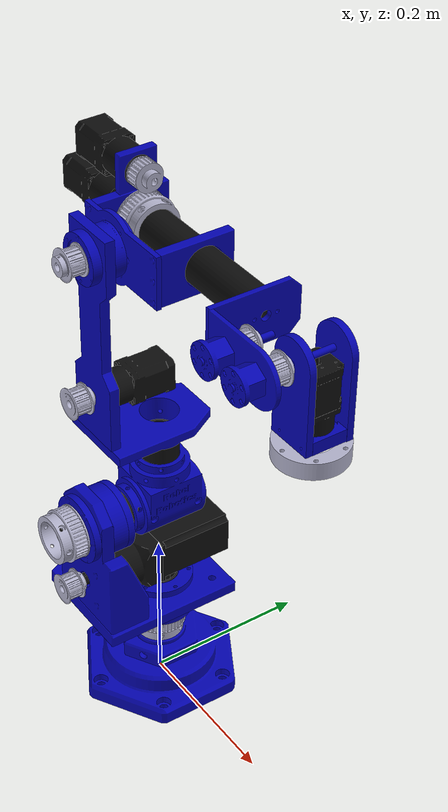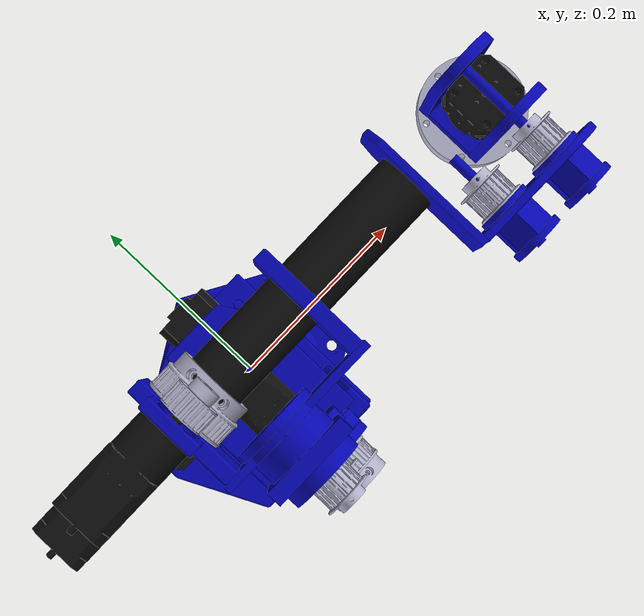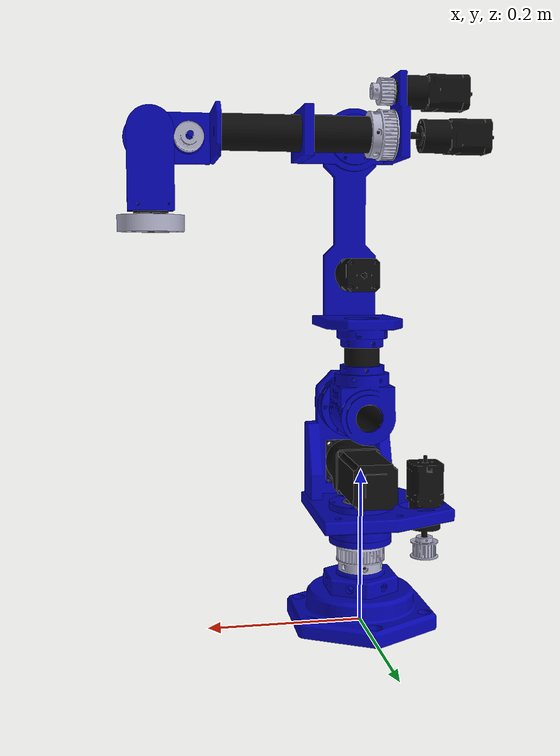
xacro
<?xml version="1.0"?>
<robot xmlns:xacro="http://www.ros.org/wiki/xacro" name="arm">
    <xacro:arg name="initial_positions_file" default="initial_positions.yaml" />

    <!-- Import arm urdf file -->
    <xacro:include filename="$(find arm_description)/urdf/arm.xacro" />

    <!-- Import control_xacro -->
    <xacro:include filename="arm.ros2_control.xacro" />

    <xacro:arm_ros2_control name="FakeSystem" initial_positions_file="$(arg initial_positions_file)"/>

</robot>

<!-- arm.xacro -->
<robot name="arm" xmlns:xacro="http://www.ros.org/wiki/xacro">

<xacro:include filename="$(find arm_description)/urdf/materials.xacro" />
<xacro:include filename="$(find arm_description)/urdf/arm.trans" />
<xacro:include filename="$(find arm_description)/urdf/arm.gazebo" />
<xacro:include filename="ros2_control.xacro" />

<link name="base_link">
  <inertial>
    <origin xyz="2.6758679619289235e-14 0.0 0.02266233904051618" rpy="0 0 0"/>
    <mass value="2.5346787978702183"/>
    <inertia ixx="0.005207" iyy="0.005207" izz="0.009019" ixy="-0.0" iyz="-0.0" ixz="0.0"/>
  </inertial>
  <visual>
    <origin xyz="0 0 0" rpy="0 0 0"/>
    <geometry>
      <mesh filename="file://$(find arm_description)/meshes/base_link.stl" scale="0.001 0.001 0.001"/>
    </geometry>
    <material name="blue"/>
  </visual>
  <collision>
    <origin xyz="0 0 0" rpy="0 0 0"/>
    <geometry>
      <mesh filename="file://$(find arm_description)/meshes/base_link.stl" scale="0.001 0.001 0.001"/>
    </geometry>
  </collision>
</link>

<link name="pulley_c_v9_1">
  <inertial>
    <origin xyz="-5.567313502074602e-17 4.098862764811248e-17 -0.003294330259347028" rpy="0 0 0"/>
    <mass value="0.05283781710784995"/>
    <inertia ixx="2.4e-05" iyy="2.4e-05" izz="3.8e-05" ixy="-0.0" iyz="0.0" ixz="-0.0"/>
  </inertial>
  <visual>
    <origin xyz="-0.0 -0.0 -0.09" rpy="0 0 0"/>
    <geometry>
      <mesh filename="file://$(find arm_description)/meshes/pulley_c_v9_1.stl" scale="0.001 0.001 0.001"/>
    </geometry>
    <material name="iron"/>
  </visual>
  <collision>
    <origin xyz="-0.0 -0.0 -0.09" rpy="0 0 0"/>
    <geometry>
      <mesh filename="file://$(find arm_description)/meshes/pulley_c_v9_1.stl" scale="0.001 0.001 0.001"/>
    </geometry>
  </collision>
</link>

<link name="shoulder_bearling_house_prt1_v14_1">
  <inertial>
    <origin xyz="4.208209917286061e-06 2.4287672297167474e-06 -0.012900153986197746" rpy="0 0 0"/>
    <mass value="0.057783249767342296"/>
    <inertia ixx="3.6e-05" iyy="3.6e-05" izz="7.1e-05" ixy="-0.0" iyz="0.0" ixz="0.0"/>
  </inertial>
  <visual>
    <origin xyz="-0.0 -0.0 -0.123" rpy="0 0 0"/>
    <geometry>
      <mesh filename="file://$(find arm_description)/meshes/shoulder_bearling_house_prt1_v14_1.stl" scale="0.001 0.001 0.001"/>
    </geometry>
    <material name="blue"/>
  </visual>
  <collision>
    <origin xyz="-0.0 -0.0 -0.123" rpy="0 0 0"/>
    <geometry>
      <mesh filename="file://$(find arm_description)/meshes/shoulder_bearling_house_prt1_v14_1.stl" scale="0.001 0.001 0.001"/>
    </geometry>
  </collision>
</link>

<link name="table1_v2_1">
  <inertial>
    <origin xyz="-0.01893394777000812 -0.0198227756761575 0.008078541713728321" rpy="0 0 0"/>
    <mass value="0.9953039551471342"/>
    <inertia ixx="0.002494" iyy="0.002414" izz="0.004866" ixy="-9.6e-05" iyz="2e-06" ixz="-1e-06"/>
  </inertial>
  <visual>
    <origin xyz="-0.0 -0.0 -0.1344" rpy="0 0 0"/>
    <geometry>
      <mesh filename="file://$(find arm_description)/meshes/table1_v2_1.stl" scale="0.001 0.001 0.001"/>
    </geometry>
    <material name="blue"/>
  </visual>
  <collision>
    <origin xyz="-0.0 -0.0 -0.1344" rpy="0 0 0"/>
    <geometry>
      <mesh filename="file://$(find arm_description)/meshes/table1_v2_1.stl" scale="0.001 0.001 0.001"/>
    </geometry>
  </collision>
</link>

<link name="shoulder_bearling_house_prt3_v2_1">
  <inertial>
    <origin xyz="-3.326885494954389e-06 -9.453818210990768e-11 0.004385481296303423" rpy="0 0 0"/>
    <mass value="0.05938208856291772"/>
    <inertia ixx="3.7e-05" iyy="3.7e-05" izz="7.3e-05" ixy="0.0" iyz="-0.0" ixz="-0.0"/>
  </inertial>
  <visual>
    <origin xyz="-0.0 -0.0 -0.1504" rpy="0 0 0"/>
    <geometry>
      <mesh filename="file://$(find arm_description)/meshes/shoulder_bearling_house_prt3_v2_1.stl" scale="0.001 0.001 0.001"/>
    </geometry>
    <material name="blue"/>
  </visual>
  <collision>
    <origin xyz="-0.0 -0.0 -0.1504" rpy="0 0 0"/>
    <geometry>
      <mesh filename="file://$(find arm_description)/meshes/shoulder_bearling_house_prt3_v2_1.stl" scale="0.001 0.001 0.001"/>
    </geometry>
  </collision>
</link>

<link name="shoulder_v2_1">
  <inertial>
    <origin xyz="-0.05003301392386567 0.00744711420020433 0.06537453945113983" rpy="0 0 0"/>
    <mass value="0.7582173734794716"/>
    <inertia ixx="0.001635" iyy="0.002653" izz="0.001251" ixy="0.0" iyz="0.000136" ixz="-1e-06"/>
  </inertial>
  <visual>
    <origin xyz="-0.05 0.095 -0.1504" rpy="0 0 0"/>
    <geometry>
      <mesh filename="file://$(find arm_description)/meshes/shoulder_v2_1.stl" scale="0.001 0.001 0.001"/>
    </geometry>
    <material name="blue"/>
  </visual>
  <collision>
    <origin xyz="-0.05 0.095 -0.1504" rpy="0 0 0"/>
    <geometry>
      <mesh filename="file://$(find arm_description)/meshes/shoulder_v2_1.stl" scale="0.001 0.001 0.001"/>
    </geometry>
  </collision>
</link>

<link name="plangearbox1_v2_1">
  <inertial>
    <origin xyz="-2.198402479996289e-05 0.04289853923367516 7.979625855469852e-06" rpy="0 0 0"/>
    <mass value="2.0006291062763104"/>
    <inertia ixx="0.001765" iyy="0.000982" izz="0.001764" ixy="0.0" iyz="1e-06" ixz="-0.0"/>
  </inertial>
  <visual>
    <origin xyz="2.4e-05 0.097184 -0.1954" rpy="0 0 0"/>
    <geometry>
      <mesh filename="file://$(find arm_description)/meshes/plangearbox1_v2_1.stl" scale="0.001 0.001 0.001"/>
    </geometry>
    <material name="black"/>
  </visual>
  <collision>
    <origin xyz="2.4e-05 0.097184 -0.1954" rpy="0 0 0"/>
    <geometry>
      <mesh filename="file://$(find arm_description)/meshes/plangearbox1_v2_1.stl" scale="0.001 0.001 0.001"/>
    </geometry>
  </collision>
</link>

<link name="stepper1_v2_1">
  <inertial>
    <origin xyz="-2.2452245726494987e-05 0.04805206213786515 3.443202523836786e-05" rpy="0 0 0"/>
    <mass value="0.47672097000804026"/>
    <inertia ixx="0.000488" iyy="0.000235" izz="0.000488" ixy="0.0" iyz="-1e-06" ixz="-0.0"/>
  </inertial>
  <visual>
    <origin xyz="6.7e-05 0.013684 -0.1954" rpy="0 0 0"/>
    <geometry>
      <mesh filename="file://$(find arm_description)/meshes/stepper1_v2_1.stl" scale="0.001 0.001 0.001"/>
    </geometry>
    <material name="black"/>
  </visual>
  <collision>
    <origin xyz="6.7e-05 0.013684 -0.1954" rpy="0 0 0"/>
    <geometry>
      <mesh filename="file://$(find arm_description)/meshes/stepper1_v2_1.stl" scale="0.001 0.001 0.001"/>
    </geometry>
  </collision>
</link>

<link name="shoulder_bearling_house2_prt3_v3_1">
  <inertial>
    <origin xyz="-4.0536114861531317e-07 -0.0059858275962992105 -9.453793303748625e-11" rpy="0 0 0"/>
    <mass value="0.05938208856291783"/>
    <inertia ixx="3.7e-05" iyy="7.3e-05" izz="3.7e-05" ixy="-0.0" iyz="0.0" ixz="0.0"/>
  </inertial>
  <visual>
    <origin xyz="4.5e-05 0.055884 -0.2754" rpy="0 0 0"/>
    <geometry>
      <mesh filename="file://$(find arm_description)/meshes/shoulder_bearling_house2_prt3_v3_1.stl" scale="0.001 0.001 0.001"/>
    </geometry>
    <material name="blue"/>
  </visual>
  <collision>
    <origin xyz="4.5e-05 0.055884 -0.2754" rpy="0 0 0"/>
    <geometry>
      <mesh filename="file://$(find arm_description)/meshes/shoulder_bearling_house2_prt3_v3_1.stl" scale="0.001 0.001 0.001"/>
    </geometry>
  </collision>
</link>

<link name="new_pipe_b_v8_1">
  <inertial>
    <origin xyz="-3.1295264940206456e-05 0.05999962743199911 0.002489679948011303" rpy="0 0 0"/>
    <mass value="0.08655426473406591"/>
    <inertia ixx="0.000229" iyy="3.8e-05" izz="0.000226" ixy="0.0" iyz="-0.0" ixz="-0.0"/>
  </inertial>
  <visual>
    <origin xyz="2.1e-05 0.102029 -0.2754" rpy="0 0 0"/>
    <geometry>
      <mesh filename="file://$(find arm_description)/meshes/new_pipe_b_v8_1.stl" scale="0.001 0.001 0.001"/>
    </geometry>
    <material name="black"/>
  </visual>
  <collision>
    <origin xyz="2.1e-05 0.102029 -0.2754" rpy="0 0 0"/>
    <geometry>
      <mesh filename="file://$(find arm_description)/meshes/new_pipe_b_v8_1.stl" scale="0.001 0.001 0.001"/>
    </geometry>
  </collision>
</link>

<link name="shoulder_bearling_house_2prt1_v5_1">
  <inertial>
    <origin xyz="4.24595728622469e-06 -0.004300516777600696 -4.207479079365584e-06" rpy="0 0 0"/>
    <mass value="0.05778324976734234"/>
    <inertia ixx="3.6e-05" iyy="7.1e-05" izz="3.6e-05" ixy="-0.0" iyz="-0.0" ixz="0.0"/>
  </inertial>
  <visual>
    <origin xyz="2.1e-05 0.102029 -0.2754" rpy="0 0 0"/>
    <geometry>
      <mesh filename="file://$(find arm_description)/meshes/shoulder_bearling_house_2prt1_v5_1.stl" scale="0.001 0.001 0.001"/>
    </geometry>
    <material name="blue"/>
  </visual>
  <collision>
    <origin xyz="2.1e-05 0.102029 -0.2754" rpy="0 0 0"/>
    <geometry>
      <mesh filename="file://$(find arm_description)/meshes/shoulder_bearling_house_2prt1_v5_1.stl" scale="0.001 0.001 0.001"/>
    </geometry>
  </collision>
</link>

<link name="shoulder_bearling_house2_prt2_v10_1">
  <inertial>
    <origin xyz="-7.534969931434021e-06 0.00999965589472103 7.596384632435615e-11" rpy="0 0 0"/>
    <mass value="0.17595730314710867"/>
    <inertia ixx="0.000105" iyy="0.000198" izz="0.000105" ixy="-0.0" iyz="0.0" ixz="-0.0"/>
  </inertial>
  <visual>
    <origin xyz="3e-05 0.085884 -0.2754" rpy="0 0 0"/>
    <geometry>
      <mesh filename="file://$(find arm_description)/meshes/shoulder_bearling_house2_prt2_v10_1.stl" scale="0.001 0.001 0.001"/>
    </geometry>
    <material name="blue"/>
  </visual>
  <collision>
    <origin xyz="3e-05 0.085884 -0.2754" rpy="0 0 0"/>
    <geometry>
      <mesh filename="file://$(find arm_description)/meshes/shoulder_bearling_house2_prt2_v10_1.stl" scale="0.001 0.001 0.001"/>
    </geometry>
  </collision>
</link>

<link name="tbone_v1_1">
  <inertial>
    <origin xyz="-0.0001179461306405897 -0.040037043730441445 0.011561726312559306" rpy="0 0 0"/>
    <mass value="0.7230946223073603"/>
    <inertia ixx="0.000893" iyy="0.000815" izz="0.000779" ixy="0.0" iyz="-0.0" ixz="-1e-06"/>
  </inertial>
  <visual>
    <origin xyz="9.6e-05 -0.042971 -0.2754" rpy="0 0 0"/>
    <geometry>
      <mesh filename="file://$(find arm_description)/meshes/tbone_v1_1.stl" scale="0.001 0.001 0.001"/>
    </geometry>
    <material name="blue"/>
  </visual>
  <collision>
    <origin xyz="9.6e-05 -0.042971 -0.2754" rpy="0 0 0"/>
    <geometry>
      <mesh filename="file://$(find arm_description)/meshes/tbone_v1_1.stl" scale="0.001 0.001 0.001"/>
    </geometry>
  </collision>
</link>

<link name="pipe_c_v1_1">
  <inertial>
    <origin xyz="-0.00013201873724399225 0.004305319532101214 0.029999580087758992" rpy="0 0 0"/>
    <mass value="0.03153060769791503"/>
    <inertia ixx="1.6e-05" iyy="1.5e-05" izz="1.2e-05" ixy="0.0" iyz="0.0" ixz="0.0"/>
  </inertial>
  <visual>
    <origin xyz="0.0002 -0.002971 -0.308202" rpy="0 0 0"/>
    <geometry>
      <mesh filename="file://$(find arm_description)/meshes/pipe_c_v1_1.stl" scale="0.001 0.001 0.001"/>
    </geometry>
    <material name="black"/>
  </visual>
  <collision>
    <origin xyz="0.0002 -0.002971 -0.308202" rpy="0 0 0"/>
    <geometry>
      <mesh filename="file://$(find arm_description)/meshes/pipe_c_v1_1.stl" scale="0.001 0.001 0.001"/>
    </geometry>
  </collision>
</link>

<link name="table2_v1_1">
  <inertial>
    <origin xyz="-6.1229488199372305e-06 -0.01939156035360563 0.021075670529906776" rpy="0 0 0"/>
    <mass value="0.4458483416017101"/>
    <inertia ixx="0.000644" iyy="0.000372" izz="0.000968" ixy="1e-06" iyz="2.3e-05" ixz="0.0"/>
  </inertial>
  <visual>
    <origin xyz="0.0002 -0.002971 -0.368202" rpy="0 0 0"/>
    <geometry>
      <mesh filename="file://$(find arm_description)/meshes/table2_v1_1.stl" scale="0.001 0.001 0.001"/>
    </geometry>
    <material name="blue"/>
  </visual>
  <collision>
    <origin xyz="0.0002 -0.002971 -0.368202" rpy="0 0 0"/>
    <geometry>
      <mesh filename="file://$(find arm_description)/meshes/table2_v1_1.stl" scale="0.001 0.001 0.001"/>
    </geometry>
  </collision>
</link>

<link name="arm_plate_v2_1">
  <inertial>
    <origin xyz="-2.1378266405119113e-06 0.004999567309755676 0.12307397675626303" rpy="0 0 0"/>
    <mass value="0.46224273474069966"/>
    <inertia ixx="0.002956" iyy="0.003113" izz="0.000168" ixy="-0.0" iyz="-0.0" ixz="-0.0"/>
  </inertial>
  <visual>
    <origin xyz="0.000157 0.081029 -0.398202" rpy="0 0 0"/>
    <geometry>
      <mesh filename="file://$(find arm_description)/meshes/arm_plate_v2_1.stl" scale="0.001 0.001 0.001"/>
    </geometry>
    <material name="blue"/>
  </visual>
  <collision>
    <origin xyz="0.000157 0.081029 -0.398202" rpy="0 0 0"/>
    <geometry>
      <mesh filename="file://$(find arm_description)/meshes/arm_plate_v2_1.stl" scale="0.001 0.001 0.001"/>
    </geometry>
  </collision>
</link>

<link name="bearing_holder_elbow_v3_1">
  <inertial>
    <origin xyz="-6.845835323396126e-06 0.01201199759666062 0.0003832891577878472" rpy="0 0 0"/>
    <mass value="0.2912306079023313"/>
    <inertia ixx="0.000136" iyy="0.000186" izz="0.000138" ixy="-0.0" iyz="3e-06" ixz="-0.0"/>
  </inertial>
  <visual>
    <origin xyz="0.000156 0.082029 -0.628362" rpy="0 0 0"/>
    <geometry>
      <mesh filename="file://$(find arm_description)/meshes/bearing_holder_elbow_v3_1.stl" scale="0.001 0.001 0.001"/>
    </geometry>
    <material name="blue"/>
  </visual>
  <collision>
    <origin xyz="0.000156 0.082029 -0.628362" rpy="0 0 0"/>
    <geometry>
      <mesh filename="file://$(find arm_description)/meshes/bearing_holder_elbow_v3_1.stl" scale="0.001 0.001 0.001"/>
    </geometry>
  </collision>
</link>

<link name="elbow_joint_axes_v5_1">
  <inertial>
    <origin xyz="-1.6827600113223566e-05 0.03187463876334105 0.00016453920275805167" rpy="0 0 0"/>
    <mass value="0.4827163962244698"/>
    <inertia ixx="0.000198" iyy="0.000151" izz="0.000198" ixy="0.0" iyz="1e-06" ixz="-0.0"/>
  </inertial>
  <visual>
    <origin xyz="0.000151 0.091029 -0.628362" rpy="0 0 0"/>
    <geometry>
      <mesh filename="file://$(find arm_description)/meshes/elbow_joint_axes_v5_1.stl" scale="0.001 0.001 0.001"/>
    </geometry>
    <material name="blue"/>
  </visual>
  <collision>
    <origin xyz="0.000151 0.091029 -0.628362" rpy="0 0 0"/>
    <geometry>
      <mesh filename="file://$(find arm_description)/meshes/elbow_joint_axes_v5_1.stl" scale="0.001 0.001 0.001"/>
    </geometry>
  </collision>
</link>

<link name="elbow_side_plate_v3_1">
  <inertial>
    <origin xyz="0.016154358279447927 -0.0014598177767405976 -1.5816912823929385e-07" rpy="0 0 0"/>
    <mass value="0.3773934236223084"/>
    <inertia ixx="0.000159" iyy="0.000733" izz="0.000577" ixy="-0.0" iyz="0.0" ixz="-0.0"/>
  </inertial>
  <visual>
    <origin xyz="0.000174 0.047929 -0.628362" rpy="0 0 0"/>
    <geometry>
      <mesh filename="file://$(find arm_description)/meshes/elbow_side_plate_v3_1.stl" scale="0.001 0.001 0.001"/>
    </geometry>
    <material name="blue"/>
  </visual>
  <collision>
    <origin xyz="0.000174 0.047929 -0.628362" rpy="0 0 0"/>
    <geometry>
      <mesh filename="file://$(find arm_description)/meshes/elbow_side_plate_v3_1.stl" scale="0.001 0.001 0.001"/>
    </geometry>
  </collision>
</link>

<link name="elbow_pipe_holder_front_v1_1">
  <inertial>
    <origin xyz="-2.4732369058602655e-05 0.04744566116714759 -1.6236534283731174e-07" rpy="0 0 0"/>
    <mass value="0.12535784680858278"/>
    <inertia ixx="0.000161" iyy="5.3e-05" izz="0.000111" ixy="0.0" iyz="0.0" ixz="-0.0"/>
  </inertial>
  <visual>
    <origin xyz="-0.075429 0.052391 -0.628362" rpy="0 0 0"/>
    <geometry>
      <mesh filename="file://$(find arm_description)/meshes/elbow_pipe_holder_front_v1_1.stl" scale="0.001 0.001 0.001"/>
    </geometry>
    <material name="blue"/>
  </visual>
  <collision>
    <origin xyz="-0.075429 0.052391 -0.628362" rpy="0 0 0"/>
    <geometry>
      <mesh filename="file://$(find arm_description)/meshes/elbow_pipe_holder_front_v1_1.stl" scale="0.001 0.001 0.001"/>
    </geometry>
  </collision>
</link>

<link name="elbow_pipe_holder_rear_v1_1">
  <inertial>
    <origin xyz="-4.207935674917229e-05 0.04719676595537797 0.010539249232727976" rpy="0 0 0"/>
    <mass value="0.15600825318410017"/>
    <inertia ixx="0.00025" iyy="0.000131" izz="0.000123" ixy="0.0" iyz="-1.5e-05" ixz="0.0"/>
  </inertial>
  <visual>
    <origin xyz="0.044573 0.050002 -0.628362" rpy="0 0 0"/>
    <geometry>
      <mesh filename="file://$(find arm_description)/meshes/elbow_pipe_holder_rear_v1_1.stl" scale="0.001 0.001 0.001"/>
    </geometry>
    <material name="blue"/>
  </visual>
  <collision>
    <origin xyz="0.044573 0.050002 -0.628362" rpy="0 0 0"/>
    <geometry>
      <mesh filename="file://$(find arm_description)/meshes/elbow_pipe_holder_rear_v1_1.stl" scale="0.001 0.001 0.001"/>
    </geometry>
  </collision>
</link>

<link name="pipe_under_arm_v2_1">
  <inertial>
    <origin xyz="0.10250046145956454 5.297211662203937e-05 -0.004307940502741969" rpy="0 0 0"/>
    <mass value="0.12349488015016677"/>
    <inertia ixx="4.9e-05" iyy="0.000596" izz="0.00059" ixy="-0.0" iyz="-0.0" ixz="0.0"/>
  </inertial>
  <visual>
    <origin xyz="0.038602 -0.006274 -0.628362" rpy="0 0 0"/>
    <geometry>
      <mesh filename="file://$(find arm_description)/meshes/pipe_under_arm_v2_1.stl" scale="0.001 0.001 0.001"/>
    </geometry>
    <material name="black"/>
  </visual>
  <collision>
    <origin xyz="0.038602 -0.006274 -0.628362" rpy="0 0 0"/>
    <geometry>
      <mesh filename="file://$(find arm_description)/meshes/pipe_under_arm_v2_1.stl" scale="0.001 0.001 0.001"/>
    </geometry>
  </collision>
</link>

<link name="hand_joint_mount_plate_v3_1">
  <inertial>
    <origin xyz="0.00300742732847753 -0.013557344318412634 -0.0005099001899346867" rpy="0 0 0"/>
    <mass value="0.32060285971182284"/>
    <inertia ixx="0.000426" iyy="0.000112" izz="0.000316" ixy="0.0" iyz="0.0" ixz="-0.0"/>
  </inertial>
  <visual>
    <origin xyz="-0.181398 -0.006388 -0.628362" rpy="0 0 0"/>
    <geometry>
      <mesh filename="file://$(find arm_description)/meshes/hand_joint_mount_plate_v3_1.stl" scale="0.001 0.001 0.001"/>
    </geometry>
    <material name="blue"/>
  </visual>
  <collision>
    <origin xyz="-0.181398 -0.006388 -0.628362" rpy="0 0 0"/>
    <geometry>
      <mesh filename="file://$(find arm_description)/meshes/hand_joint_mount_plate_v3_1.stl" scale="0.001 0.001 0.001"/>
    </geometry>
  </collision>
</link>

<link name="hand_joint_side_plate_v4_1">
  <inertial>
    <origin xyz="0.05175482031717854 0.0020262647922672378 -0.03250013897642112" rpy="0 0 0"/>
    <mass value="0.1082034869639076"/>
    <inertia ixx="3.6e-05" iyy="0.000134" izz="9.9e-05" ixy="-0.0" iyz="-0.0" ixz="-0.0"/>
  </inertial>
  <visual>
    <origin xyz="-0.187433 0.060609 -0.659562" rpy="0 0 0"/>
    <geometry>
      <mesh filename="file://$(find arm_description)/meshes/hand_joint_side_plate_v4_1.stl" scale="0.001 0.001 0.001"/>
    </geometry>
    <material name="blue"/>
  </visual>
  <collision>
    <origin xyz="-0.187433 0.060609 -0.659562" rpy="0 0 0"/>
    <geometry>
      <mesh filename="file://$(find arm_description)/meshes/hand_joint_side_plate_v4_1.stl" scale="0.001 0.001 0.001"/>
    </geometry>
  </collision>
</link>

<link name="tool_joint_bearing_holders_v4_1">
  <inertial>
    <origin xyz="-0.023101644400103677 -0.00045075139168670314 -1.3897642126003973e-07" rpy="0 0 0"/>
    <mass value="0.1876316953813937"/>
    <inertia ixx="0.000156" iyy="0.000132" izz="0.000272" ixy="-2.5e-05" iyz="0.0" ixz="-0.0"/>
  </inertial>
  <visual>
    <origin xyz="-0.264826 0.05557 -0.627062" rpy="0 0 0"/>
    <geometry>
      <mesh filename="file://$(find arm_description)/meshes/tool_joint_bearing_holders_v4_1.stl" scale="0.001 0.001 0.001"/>
    </geometry>
    <material name="blue"/>
  </visual>
  <collision>
    <origin xyz="-0.264826 0.05557 -0.627062" rpy="0 0 0"/>
    <geometry>
      <mesh filename="file://$(find arm_description)/meshes/tool_joint_bearing_holders_v4_1.stl" scale="0.001 0.001 0.001"/>
    </geometry>
  </collision>
</link>

<link name="tool_joint_motor_side_plate_right_v1_1">
  <inertial>
    <origin xyz="-1.3178657921719683e-05 0.012000458810531562 -0.036201093845292576" rpy="0 0 0"/>
    <mass value="0.14113580373061935"/>
    <inertia ixx="0.000164" iyy="0.000198" izz="3.6e-05" ixy="-0.0" iyz="-0.0" ixz="-0.0"/>
  </inertial>
  <visual>
    <origin xyz="-0.264812 0.02757 -0.627062" rpy="0 0 0"/>
    <geometry>
      <mesh filename="file://$(find arm_description)/meshes/tool_joint_motor_side_plate_right_v1_1.stl" scale="0.001 0.001 0.001"/>
    </geometry>
    <material name="blue"/>
  </visual>
  <collision>
    <origin xyz="-0.264812 0.02757 -0.627062" rpy="0 0 0"/>
    <geometry>
      <mesh filename="file://$(find arm_description)/meshes/tool_joint_motor_side_plate_right_v1_1.stl" scale="0.001 0.001 0.001"/>
    </geometry>
  </collision>
</link>

<link name="tool_joint_motor_side_plate_left_v6_1">
  <inertial>
    <origin xyz="-2.1117275641024946e-05 0.053500459225748184 -0.037201093845318445" rpy="0 0 0"/>
    <mass value="0.14113580373062093"/>
    <inertia ixx="0.000164" iyy="0.000198" izz="3.6e-05" ixy="-0.0" iyz="0.0" ixz="0.0"/>
  </inertial>
  <visual>
    <origin xyz="-0.264808 0.01957 -0.627062" rpy="0 0 0"/>
    <geometry>
      <mesh filename="file://$(find arm_description)/meshes/tool_joint_motor_side_plate_left_v6_1.stl" scale="0.001 0.001 0.001"/>
    </geometry>
    <material name="blue"/>
  </visual>
  <collision>
    <origin xyz="-0.264808 0.01957 -0.627062" rpy="0 0 0"/>
    <geometry>
      <mesh filename="file://$(find arm_description)/meshes/tool_joint_motor_side_plate_left_v6_1.stl" scale="0.001 0.001 0.001"/>
    </geometry>
  </collision>
</link>

<link name="tool_joint_motor_plate_v1_1">
  <inertial>
    <origin xyz="-0.01988380290676811 0.025582530758864713 -0.0007908112101269182" rpy="0 0 0"/>
    <mass value="0.2050367379930667"/>
    <inertia ixx="3.5e-05" iyy="6.6e-05" izz="9.5e-05" ixy="-0.0" iyz="-0.0" ixz="-0.0"/>
  </inertial>
  <visual>
    <origin xyz="-0.284866 0.016559 -0.539562" rpy="0 0 0"/>
    <geometry>
      <mesh filename="file://$(find arm_description)/meshes/tool_joint_motor_plate_v1_1.stl" scale="0.001 0.001 0.001"/>
    </geometry>
    <material name="blue"/>
  </visual>
  <collision>
    <origin xyz="-0.284866 0.016559 -0.539562" rpy="0 0 0"/>
    <geometry>
      <mesh filename="file://$(find arm_description)/meshes/tool_joint_motor_plate_v1_1.stl" scale="0.001 0.001 0.001"/>
    </geometry>
  </collision>
</link>

<link name="stepper_motor1_v3_1">
  <inertial>
    <origin xyz="-1.2963741052862687e-09 -2.2151340179915072e-05 0.030273068307444" rpy="0 0 0"/>
    <mass value="0.22429225713578868"/>
    <inertia ixx="0.000176" iyy="0.000176" izz="5.6e-05" ixy="-0.0" iyz="0.0" ixz="0.0"/>
  </inertial>
  <visual>
    <origin xyz="0.087 0.0 -0.1344" rpy="0 0 0"/>
    <geometry>
      <mesh filename="file://$(find arm_description)/meshes/stepper_motor1_v3_1.stl" scale="0.001 0.001 0.001"/>
    </geometry>
    <material name="black"/>
  </visual>
  <collision>
    <origin xyz="0.087 0.0 -0.1344" rpy="0 0 0"/>
    <geometry>
      <mesh filename="file://$(find arm_description)/meshes/stepper_motor1_v3_1.stl" scale="0.001 0.001 0.001"/>
    </geometry>
  </collision>
</link>

<link name="pulley_a_v1_1">
  <inertial>
    <origin xyz="3.360428817072991e-05 2.6405443145570245e-06 -0.005404959655462074" rpy="0 0 0"/>
    <mass value="0.041929248041699244"/>
    <inertia ixx="5e-06" iyy="5e-06" izz="5e-06" ixy="0.0" iyz="0.0" ixz="-0.0"/>
  </inertial>
  <visual>
    <origin xyz="0.087 0.0 -0.0979" rpy="0 0 0"/>
    <geometry>
      <mesh filename="file://$(find arm_description)/meshes/pulley_a_v1_1.stl" scale="0.001 0.001 0.001"/>
    </geometry>
    <material name="iron"/>
  </visual>
  <collision>
    <origin xyz="0.087 0.0 -0.0979" rpy="0 0 0"/>
    <geometry>
      <mesh filename="file://$(find arm_description)/meshes/pulley_a_v1_1.stl" scale="0.001 0.001 0.001"/>
    </geometry>
  </collision>
</link>

<link name="stepper_motor2_v1_1">
  <inertial>
    <origin xyz="-2.5936122922037028e-05 0.0502726297472388 2.1731427938709302e-05" rpy="0 0 0"/>
    <mass value="0.22429225713578857"/>
    <inertia ixx="0.000176" iyy="5.6e-05" izz="0.000176" ixy="0.0" iyz="-0.0" ixz="0.0"/>
  </inertial>
  <visual>
    <origin xyz="0.000156 0.082029 -0.453202" rpy="0 0 0"/>
    <geometry>
      <mesh filename="file://$(find arm_description)/meshes/stepper_motor2_v1_1.stl" scale="0.001 0.001 0.001"/>
    </geometry>
    <material name="black"/>
  </visual>
  <collision>
    <origin xyz="0.000156 0.082029 -0.453202" rpy="0 0 0"/>
    <geometry>
      <mesh filename="file://$(find arm_description)/meshes/stepper_motor2_v1_1.stl" scale="0.001 0.001 0.001"/>
    </geometry>
  </collision>
</link>

<link name="stepper_motor3_v1_1">
  <inertial>
    <origin xyz="-0.06527258263415749 -3.410887659529519e-05 2.2002528992093318e-05" rpy="0 0 0"/>
    <mass value="0.2242922571357887"/>
    <inertia ixx="5.6e-05" iyy="0.000176" izz="0.000176" ixy="-0.0" iyz="0.0" ixz="0.0"/>
  </inertial>
  <visual>
    <origin xyz="0.053602 -0.006267 -0.628362" rpy="0 0 0"/>
    <geometry>
      <mesh filename="file://$(find arm_description)/meshes/stepper_motor3_v1_1.stl" scale="0.001 0.001 0.001"/>
    </geometry>
    <material name="black"/>
  </visual>
  <collision>
    <origin xyz="0.053602 -0.006267 -0.628362" rpy="0 0 0"/>
    <geometry>
      <mesh filename="file://$(find arm_description)/meshes/stepper_motor3_v1_1.stl" scale="0.001 0.001 0.001"/>
    </geometry>
  </collision>
</link>

<link name="stepper_motor4_v1_1">
  <inertial>
    <origin xyz="-0.039272655496469945 -1.98899830251573e-05 2.199317106288401e-05" rpy="0 0 0"/>
    <mass value="0.22429225713578868"/>
    <inertia ixx="5.6e-05" iyy="0.000176" izz="0.000176" ixy="-0.0" iyz="0.0" ixz="0.0"/>
  </inertial>
  <visual>
    <origin xyz="0.049602 -0.006402 -0.682112" rpy="0 0 0"/>
    <geometry>
      <mesh filename="file://$(find arm_description)/meshes/stepper_motor4_v1_1.stl" scale="0.001 0.001 0.001"/>
    </geometry>
    <material name="black"/>
  </visual>
  <collision>
    <origin xyz="0.049602 -0.006402 -0.682112" rpy="0 0 0"/>
    <geometry>
      <mesh filename="file://$(find arm_description)/meshes/stepper_motor4_v1_1.stl" scale="0.001 0.001 0.001"/>
    </geometry>
  </collision>
</link>

<link name="stepper_motor6_v1_1">
  <inertial>
    <origin xyz="4.6778499018795827e-07 -2.1867344846110068e-05 0.037272929331035765" rpy="0 0 0"/>
    <mass value="0.22429225713578868"/>
    <inertia ixx="0.000176" iyy="0.000176" izz="5.6e-05" ixy="-0.0" iyz="0.0" ixz="-0.0"/>
  </inertial>
  <visual>
    <origin xyz="-0.264839 -0.009113 -0.537062" rpy="0 0 0"/>
    <geometry>
      <mesh filename="file://$(find arm_description)/meshes/stepper_motor6_v1_1.stl" scale="0.001 0.001 0.001"/>
    </geometry>
    <material name="black"/>
  </visual>
  <collision>
    <origin xyz="-0.264839 -0.009113 -0.537062" rpy="0 0 0"/>
    <geometry>
      <mesh filename="file://$(find arm_description)/meshes/stepper_motor6_v1_1.stl" scale="0.001 0.001 0.001"/>
    </geometry>
  </collision>
</link>

<link name="pulley_c3_v1_1">
  <inertial>
    <origin xyz="0.015294803261795466 8.103295433264414e-06 -1.4881118770571078e-07" rpy="0 0 0"/>
    <mass value="0.05283781710784998"/>
    <inertia ixx="3.8e-05" iyy="2.4e-05" izz="2.4e-05" ixy="0.0" iyz="-0.0" ixz="-0.0"/>
  </inertial>
  <visual>
    <origin xyz="0.038602 -0.006274 -0.628362" rpy="0 0 0"/>
    <geometry>
      <mesh filename="file://$(find arm_description)/meshes/pulley_c3_v1_1.stl" scale="0.001 0.001 0.001"/>
    </geometry>
    <material name="iron"/>
  </visual>
  <collision>
    <origin xyz="0.038602 -0.006274 -0.628362" rpy="0 0 0"/>
    <geometry>
      <mesh filename="file://$(find arm_description)/meshes/pulley_c3_v1_1.stl" scale="0.001 0.001 0.001"/>
    </geometry>
  </collision>
</link>

<link name="pulley_c2_v1_1">
  <inertial>
    <origin xyz="1.1187124061804226e-07 0.0007053083488460232 5.551115123125783e-17" rpy="0 0 0"/>
    <mass value="0.05283781710785003"/>
    <inertia ixx="2.4e-05" iyy="3.8e-05" izz="2.4e-05" ixy="-0.0" iyz="-0.0" ixz="-0.0"/>
  </inertial>
  <visual>
    <origin xyz="9e-06 0.127029 -0.2754" rpy="0 0 0"/>
    <geometry>
      <mesh filename="file://$(find arm_description)/meshes/pulley_c2_v1_1.stl" scale="0.001 0.001 0.001"/>
    </geometry>
    <material name="iron"/>
  </visual>
  <collision>
    <origin xyz="9e-06 0.127029 -0.2754" rpy="0 0 0"/>
    <geometry>
      <mesh filename="file://$(find arm_description)/meshes/pulley_c2_v1_1.stl" scale="0.001 0.001 0.001"/>
    </geometry>
  </collision>
</link>

<link name="pulley_2_v1_1">
  <inertial>
    <origin xyz="-1.8681368414929273e-05 0.0055269484505073435 -1.571760782934084e-05" rpy="0 0 0"/>
    <mass value="0.04173686481696317"/>
    <inertia ixx="5e-06" iyy="5e-06" izz="5e-06" ixy="0.0" iyz="0.0" ixz="0.0"/>
  </inertial>
  <visual>
    <origin xyz="8e-06 0.127184 -0.1954" rpy="0 0 0"/>
    <geometry>
      <mesh filename="file://$(find arm_description)/meshes/pulley_2_v1_1.stl" scale="0.001 0.001 0.001"/>
    </geometry>
    <material name="iron"/>
  </visual>
  <collision>
    <origin xyz="8e-06 0.127184 -0.1954" rpy="0 0 0"/>
    <geometry>
      <mesh filename="file://$(find arm_description)/meshes/pulley_2_v1_1.stl" scale="0.001 0.001 0.001"/>
    </geometry>
  </collision>
</link>

<link name="pulley_3_v1_1">
  <inertial>
    <origin xyz="-1.518330814837641e-05 0.0005268555986071288 -1.613752007040281e-05" rpy="0 0 0"/>
    <mass value="0.04173686481696316"/>
    <inertia ixx="5e-06" iyy="5e-06" izz="5e-06" ixy="0.0" iyz="0.0" ixz="0.0"/>
  </inertial>
  <visual>
    <origin xyz="0.000147 0.100529 -0.453202" rpy="0 0 0"/>
    <geometry>
      <mesh filename="file://$(find arm_description)/meshes/pulley_3_v1_1.stl" scale="0.001 0.001 0.001"/>
    </geometry>
    <material name="iron"/>
  </visual>
  <collision>
    <origin xyz="0.000147 0.100529 -0.453202" rpy="0 0 0"/>
    <geometry>
      <mesh filename="file://$(find arm_description)/meshes/pulley_3_v1_1.stl" scale="0.001 0.001 0.001"/>
    </geometry>
  </collision>
</link>

<link name="pulley_4_v1_1">
  <inertial>
    <origin xyz="2.115546424991512e-05 -0.012027708945236262 -1.589775581256614e-05" rpy="0 0 0"/>
    <mass value="0.041736714555418976"/>
    <inertia ixx="5e-06" iyy="5e-06" izz="5e-06" ixy="0.0" iyz="-0.0" ixz="-0.0"/>
  </inertial>
  <visual>
    <origin xyz="0.000151 0.091029 -0.628362" rpy="0 0 0"/>
    <geometry>
      <mesh filename="file://$(find arm_description)/meshes/pulley_4_v1_1.stl" scale="0.001 0.001 0.001"/>
    </geometry>
    <material name="iron"/>
  </visual>
  <collision>
    <origin xyz="0.000151 0.091029 -0.628362" rpy="0 0 0"/>
    <geometry>
      <mesh filename="file://$(find arm_description)/meshes/pulley_4_v1_1.stl" scale="0.001 0.001 0.001"/>
    </geometry>
  </collision>
</link>

<link name="pulley_b_v2_1">
  <inertial>
    <origin xyz="-0.005800068872081454 -3.448875580973343e-05 -1.5816911613786289e-07" rpy="0 0 0"/>
    <mass value="0.12636528243557776"/>
    <inertia ixx="1.6e-05" iyy="1.4e-05" izz="1.4e-05" ixy="0.0" iyz="-0.0" ixz="-0.0"/>
  </inertial>
  <visual>
    <origin xyz="0.020102 -0.006418 -0.682112" rpy="0 0 0"/>
    <geometry>
      <mesh filename="file://$(find arm_description)/meshes/pulley_b_v2_1.stl" scale="0.001 0.001 0.001"/>
    </geometry>
    <material name="iron"/>
  </visual>
  <collision>
    <origin xyz="0.020102 -0.006418 -0.682112" rpy="0 0 0"/>
    <geometry>
      <mesh filename="file://$(find arm_description)/meshes/pulley_b_v2_1.stl" scale="0.001 0.001 0.001"/>
    </geometry>
  </collision>
</link>

<link name="pulley_5_v1_1">
  <inertial>
    <origin xyz="2.5581263560503498e-06 -0.03397299677557677 -1.5856584250739658e-05" rpy="0 0 0"/>
    <mass value="0.04173686481696314"/>
    <inertia ixx="5e-06" iyy="5e-06" izz="5e-06" ixy="0.0" iyz="0.0" ixz="0.0"/>
  </inertial>
  <visual>
    <origin xyz="-0.2148 0.005595 -0.627062" rpy="0 0 0"/>
    <geometry>
      <mesh filename="file://$(find arm_description)/meshes/pulley_5_v1_1.stl" scale="0.001 0.001 0.001"/>
    </geometry>
    <material name="iron"/>
  </visual>
  <collision>
    <origin xyz="-0.2148 0.005595 -0.627062" rpy="0 0 0"/>
    <geometry>
      <mesh filename="file://$(find arm_description)/meshes/pulley_5_v1_1.stl" scale="0.001 0.001 0.001"/>
    </geometry>
  </collision>
</link>

<link name="pulley_6_v1_1">
  <inertial>
    <origin xyz="-2.1397008183765553e-05 0.01202775060173767 -1.5856584250628636e-05" rpy="0 0 0"/>
    <mass value="0.04173686481696321"/>
    <inertia ixx="5e-06" iyy="5e-06" izz="5e-06" ixy="0.0" iyz="0.0" ixz="0.0"/>
  </inertial>
  <visual>
    <origin xyz="-0.264824 0.05167 -0.627062" rpy="0 0 0"/>
    <geometry>
      <mesh filename="file://$(find arm_description)/meshes/pulley_6_v1_1.stl" scale="0.001 0.001 0.001"/>
    </geometry>
    <material name="iron"/>
  </visual>
  <collision>
    <origin xyz="-0.264824 0.05167 -0.627062" rpy="0 0 0"/>
    <geometry>
      <mesh filename="file://$(find arm_description)/meshes/pulley_6_v1_1.stl" scale="0.001 0.001 0.001"/>
    </geometry>
  </collision>
</link>

<link name="end_effector_v1_1">
  <inertial>
    <origin xyz="2.770738830926156e-06 1.6218663813991757e-06 -0.010000138976408168" rpy="0 0 0"/>
    <mass value="0.1759573031471086"/>
    <inertia ixx="0.000105" iyy="0.000105" izz="0.000198" ixy="0.0" iyz="-0.0" ixz="-0.0"/>
  </inertial>
  <visual>
    <origin xyz="-0.264839 -0.009113 -0.526662" rpy="0 0 0"/>
    <geometry>
      <mesh filename="file://$(find arm_description)/meshes/end_effector_v1_1.stl" scale="0.001 0.001 0.001"/>
    </geometry>
    <material name="iron"/>
  </visual>
  <collision>
    <origin xyz="-0.264839 -0.009113 -0.526662" rpy="0 0 0"/>
    <geometry>
      <mesh filename="file://$(find arm_description)/meshes/end_effector_v1_1.stl" scale="0.001 0.001 0.001"/>
    </geometry>
  </collision>
</link>

<link name="pipe_a_v3_1">
  <inertial>
    <origin xyz="-3.750134726869652e-08 0.004307791691554238 0.07950000000000002" rpy="0 0 0"/>
    <mass value="0.08355611039947468"/>
    <inertia ixx="0.000195" iyy="0.00019" izz="3.3e-05" ixy="0.0" iyz="0.0" ixz="0.0"/>
  </inertial>
  <visual>
    <origin xyz="-0.0 -0.0 -0.0" rpy="0 0 0"/>
    <geometry>
      <mesh filename="file://$(find arm_description)/meshes/pipe_a_v3_1.stl" scale="0.001 0.001 0.001"/>
    </geometry>
    <material name="black"/>
  </visual>
  <collision>
    <origin xyz="-0.0 -0.0 -0.0" rpy="0 0 0"/>
    <geometry>
      <mesh filename="file://$(find arm_description)/meshes/pipe_a_v3_1.stl" scale="0.001 0.001 0.001"/>
    </geometry>
  </collision>
</link>

<link name="shoulder_bearling_house_prt2_v1_1">
  <inertial>
    <origin xyz="2.6732324937102262e-06 7.59638615012222e-11 0.009999999999999995" rpy="0 0 0"/>
    <mass value="0.17595730314710867"/>
    <inertia ixx="0.000105" iyy="0.000105" izz="0.000198" ixy="0.0" iyz="0.0" ixz="0.0"/>
  </inertial>
  <visual>
    <origin xyz="-0.0 -0.0 -0.1144" rpy="0 0 0"/>
    <geometry>
      <mesh filename="file://$(find arm_description)/meshes/shoulder_bearling_house_prt2_v1_1.stl" scale="0.001 0.001 0.001"/>
    </geometry>
    <material name="blue"/>
  </visual>
  <collision>
    <origin xyz="-0.0 -0.0 -0.1144" rpy="0 0 0"/>
    <geometry>
      <mesh filename="file://$(find arm_description)/meshes/shoulder_bearling_house_prt2_v1_1.stl" scale="0.001 0.001 0.001"/>
    </geometry>
  </collision>
</link>

<joint name="Rigid 2" type="fixed">
  <origin xyz="0.0 0.0 0.09" rpy="0 0 0"/>
  <parent link="pipe_a_v3_1"/>
  <child link="pulley_c_v9_1"/>
</joint>

<joint name="Revolute 3" type="continuous">
  <origin xyz="0.0 0.0 0.033" rpy="0 0 0"/>
  <parent link="pulley_c_v9_1"/>
  <child link="shoulder_bearling_house_prt1_v14_1"/>
  <axis xyz="0.0 0.0 -1.0"/>
</joint>

<joint name="Rigid 5" type="fixed">
  <origin xyz="0.0 0.0 0.02" rpy="0 0 0"/>
  <parent link="shoulder_bearling_house_prt2_v1_1"/>
  <child link="table1_v2_1"/>
</joint>

<joint name="Rigid 6" type="fixed">
  <origin xyz="0.0 0.0 0.016" rpy="0 0 0"/>
  <parent link="table1_v2_1"/>
  <child link="shoulder_bearling_house_prt3_v2_1"/>
</joint>

<joint name="Rigid 7" type="fixed">
  <origin xyz="0.05 -0.095 0.016" rpy="0 0 0"/>
  <parent link="table1_v2_1"/>
  <child link="shoulder_v2_1"/>
</joint>

<joint name="Rigid 8" type="fixed">
  <origin xyz="-0.050024 -0.002184 0.045" rpy="0 0 0"/>
  <parent link="shoulder_v2_1"/>
  <child link="plangearbox1_v2_1"/>
</joint>

<joint name="Rigid 9" type="fixed">
  <origin xyz="-4.3e-05 0.0835 0.0" rpy="0 0 0"/>
  <parent link="plangearbox1_v2_1"/>
  <child link="stepper1_v2_1"/>
</joint>

<joint name="Rigid 27" type="fixed">
  <origin xyz="-1.5e-05 0.03 0.0" rpy="0 0 0"/>
  <parent link="shoulder_bearling_house2_prt2_v10_1"/>
  <child link="shoulder_bearling_house2_prt3_v3_1"/>
</joint>

<joint name="Revolute 28" type="continuous">
  <origin xyz="-0.050021 -0.007029 0.125" rpy="0 0 0"/>
  <parent link="shoulder_v2_1"/>
  <child link="new_pipe_b_v8_1"/>
  <axis xyz="-0.000515 1.0 -0.0"/>
</joint>

<joint name="Rigid 31" type="fixed">
  <origin xyz="-0.050021 -0.007029 0.125" rpy="0 0 0"/>
  <parent link="shoulder_v2_1"/>
  <child link="shoulder_bearling_house_2prt1_v5_1"/>
</joint>

<joint name="Rigid 32" type="fixed">
  <origin xyz="-0.05003 0.009116 0.125" rpy="0 0 0"/>
  <parent link="shoulder_v2_1"/>
  <child link="shoulder_bearling_house2_prt2_v10_1"/>
</joint>

<joint name="Rigid 34" type="fixed">
  <origin xyz="-7.5e-05 0.145 0.0" rpy="0 0 0"/>
  <parent link="new_pipe_b_v8_1"/>
  <child link="tbone_v1_1"/>
</joint>

<joint name="Rigid 35" type="fixed">
  <origin xyz="-0.000104 -0.04 0.032802" rpy="0 0 0"/>
  <parent link="tbone_v1_1"/>
  <child link="pipe_c_v1_1"/>
</joint>

<joint name="Rigid 36" type="fixed">
  <origin xyz="0.0 0.0 0.06" rpy="0 0 0"/>
  <parent link="pipe_c_v1_1"/>
  <child link="table2_v1_1"/>
</joint>

<joint name="Rigid 37" type="fixed">
  <origin xyz="4.3e-05 -0.084 0.03" rpy="0 0 0"/>
  <parent link="table2_v1_1"/>
  <child link="arm_plate_v2_1"/>
</joint>

<joint name="Rigid 39" type="fixed">
  <origin xyz="1e-06 -0.001 0.23016" rpy="0 0 0"/>
  <parent link="arm_plate_v2_1"/>
  <child link="bearing_holder_elbow_v3_1"/>
</joint>

<joint name="Revolute 40" type="continuous">
  <origin xyz="5e-06 -0.009 0.0" rpy="0 0 0"/>
  <parent link="bearing_holder_elbow_v3_1"/>
  <child link="elbow_joint_axes_v5_1"/>
  <axis xyz="0.000515 -1.0 0.0"/>
</joint>

<joint name="Rigid 41" type="fixed">
  <origin xyz="-2.3e-05 0.0431 0.0" rpy="0 0 0"/>
  <parent link="elbow_joint_axes_v5_1"/>
  <child link="elbow_side_plate_v3_1"/>
</joint>

<joint name="Rigid 42" type="fixed">
  <origin xyz="0.075603 -0.004462 0.0" rpy="0 0 0"/>
  <parent link="elbow_side_plate_v3_1"/>
  <child link="elbow_pipe_holder_front_v1_1"/>
</joint>

<joint name="Rigid 43" type="fixed">
  <origin xyz="-0.044399 -0.002073 0.0" rpy="0 0 0"/>
  <parent link="elbow_side_plate_v3_1"/>
  <child link="elbow_pipe_holder_rear_v1_1"/>
</joint>

<joint name="Revolute 44" type="continuous">
  <origin xyz="0.005971 0.056276 0.0" rpy="0 0 0"/>
  <parent link="elbow_pipe_holder_rear_v1_1"/>
  <child link="pipe_under_arm_v2_1"/>
  <axis xyz="-1.0 -0.000515 -0.0"/>
</joint>

<joint name="Rigid 45" type="fixed">
  <origin xyz="0.22 0.000114 0.0" rpy="0 0 0"/>
  <parent link="pipe_under_arm_v2_1"/>
  <child link="hand_joint_mount_plate_v3_1"/>
</joint>

<joint name="Rigid 46" type="fixed">
  <origin xyz="0.006035 -0.066997 0.0312" rpy="0 0 0"/>
  <parent link="hand_joint_mount_plate_v3_1"/>
  <child link="hand_joint_side_plate_v4_1"/>
</joint>

<joint name="Rigid 47" type="fixed">
  <origin xyz="0.077393 0.005039 -0.0325" rpy="0 0 0"/>
  <parent link="hand_joint_side_plate_v4_1"/>
  <child link="tool_joint_bearing_holders_v4_1"/>
</joint>

<joint name="Revolute 48" type="continuous">
  <origin xyz="-1.4e-05 0.028 0.0" rpy="0 0 0"/>
  <parent link="tool_joint_bearing_holders_v4_1"/>
  <child link="tool_joint_motor_side_plate_right_v1_1"/>
  <axis xyz="0.000515 -1.0 0.0"/>
</joint>

<joint name="Rigid 49" type="fixed">
  <origin xyz="-4e-06 0.008 0.0" rpy="0 0 0"/>
  <parent link="tool_joint_motor_side_plate_right_v1_1"/>
  <child link="tool_joint_motor_side_plate_left_v6_1"/>
</joint>

<joint name="Rigid 50" type="fixed">
  <origin xyz="0.020054 0.011011 -0.0875" rpy="0 0 0"/>
  <parent link="tool_joint_motor_side_plate_right_v1_1"/>
  <child link="tool_joint_motor_plate_v1_1"/>
</joint>

<joint name="Rigid 51" type="fixed">
  <origin xyz="-0.087 -0.0 0.0" rpy="0 0 0"/>
  <parent link="table1_v2_1"/>
  <child link="stepper_motor1_v3_1"/>
</joint>

<joint name="Rigid 52" type="fixed">
  <origin xyz="0.0 0.0 -0.0365" rpy="0 0 0"/>
  <parent link="stepper_motor1_v3_1"/>
  <child link="pulley_a_v1_1"/>
</joint>

<joint name="Rigid 53" type="fixed">
  <origin xyz="1e-06 -0.001 0.055" rpy="0 0 0"/>
  <parent link="arm_plate_v2_1"/>
  <child link="stepper_motor2_v1_1"/>
</joint>

<joint name="Rigid 54" type="fixed">
  <origin xyz="-0.015 -7e-06 0.0" rpy="0 0 0"/>
  <parent link="pipe_under_arm_v2_1"/>
  <child link="stepper_motor3_v1_1"/>
</joint>

<joint name="Rigid 55" type="fixed">
  <origin xyz="-0.005029 0.056404 0.05375" rpy="0 0 0"/>
  <parent link="elbow_pipe_holder_rear_v1_1"/>
  <child link="stepper_motor4_v1_1"/>
</joint>

<joint name="Rigid 56" type="fixed">
  <origin xyz="-0.020027 0.025672 -0.0025" rpy="0 0 0"/>
  <parent link="tool_joint_motor_plate_v1_1"/>
  <child link="stepper_motor6_v1_1"/>
</joint>

<joint name="Rigid 57" type="fixed">
  <origin xyz="0.005971 0.056276 0.0" rpy="0 0 0"/>
  <parent link="elbow_pipe_holder_rear_v1_1"/>
  <child link="pulley_c3_v1_1"/>
</joint>

<joint name="Rigid 58" type="fixed">
  <origin xyz="1.2e-05 -0.025 0.0" rpy="0 0 0"/>
  <parent link="new_pipe_b_v8_1"/>
  <child link="pulley_c2_v1_1"/>
</joint>

<joint name="Rigid 59" type="fixed">
  <origin xyz="1.6e-05 -0.03 0.0" rpy="0 0 0"/>
  <parent link="plangearbox1_v2_1"/>
  <child link="pulley_2_v1_1"/>
</joint>

<joint name="Rigid 60" type="fixed">
  <origin xyz="9e-06 -0.0185 0.0" rpy="0 0 0"/>
  <parent link="stepper_motor2_v1_1"/>
  <child link="pulley_3_v1_1"/>
</joint>

<joint name="Rigid 61" type="fixed">
  <origin xyz="0.0 0.0 0.0" rpy="0 0 0"/>
  <parent link="elbow_joint_axes_v5_1"/>
  <child link="pulley_4_v1_1"/>
</joint>

<joint name="Rigid 62" type="fixed">
  <origin xyz="0.0295 1.6e-05 0.0" rpy="0 0 0"/>
  <parent link="stepper_motor4_v1_1"/>
  <child link="pulley_b_v2_1"/>
</joint>

<joint name="Rigid 63" type="fixed">
  <origin xyz="-0.050026 0.049975 0.0" rpy="0 0 0"/>
  <parent link="tool_joint_bearing_holders_v4_1"/>
  <child link="pulley_5_v1_1"/>
</joint>

<joint name="Rigid 64" type="fixed">
  <origin xyz="-2e-06 0.0039 0.0" rpy="0 0 0"/>
  <parent link="tool_joint_bearing_holders_v4_1"/>
  <child link="pulley_6_v1_1"/>
</joint>

<joint name="Revolute 65" type="continuous">
  <origin xyz="0.0 0.0 -0.0104" rpy="0 0 0"/>
  <parent link="stepper_motor6_v1_1"/>
  <child link="end_effector_v1_1"/>
  <axis xyz="-0.0 -0.0 -1.0"/>
</joint>

<joint name="Rigid 66" type="fixed">
  <origin xyz="0.0 0.0 0.0" rpy="0 0 0"/>
  <parent link="base_link"/>
  <child link="pipe_a_v3_1"/>
</joint>

<joint name="Rigid 67" type="fixed">
  <origin xyz="0.0 0.0 -0.0086" rpy="0 0 0"/>
  <parent link="shoulder_bearling_house_prt1_v14_1"/>
  <child link="shoulder_bearling_house_prt2_v1_1"/>
</joint>

</robot>

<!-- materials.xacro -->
<robot name="arm" xmlns:xacro="http://www.ros.org/wiki/xacro" >

<material name="silver">
  <color rgba="0.700 0.700 0.700 1.000"/>
</material>

<material name="black">
  <color rgba="0.05 0.05 0.05 1.000"/>
</material>

<material name="blue">
  <color rgba="0.015 0.015 0.700 1.000"/>
</material>

<material name="iron">
  <color rgba="0.700 0.700 0.800 1.000"/>
</material>

</robot>

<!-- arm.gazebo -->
<robot name="arm" xmlns:xacro="http://www.ros.org/wiki/xacro" >

<xacro:property name="body_color" value="Gazebo/Blue" />
<xacro:property name="motor_color" value="Gazebo/Black" />
<xacro:property name="pulley_color" value="Gazebo/Iron" />

<gazebo>
  <plugin name="gazebo_ros2_control" filename="libgazebo_ros2_control.so">
      <robot_sim_type>gazebo_ros2_control/GazeboSystem</robot_sim_type>
      <parameters>$(find arm_description)/config/arm_controller.yaml</parameters>
    </plugin>
</gazebo>

<gazebo reference="base_link">
  <material>${body_color}</material>
  <mu1>0.2</mu1>
  <mu2>0.2</mu2>
  <self_collide>true</self_collide>
  <gravity>true</gravity>
</gazebo>

<gazebo reference="pulley_c_v9_1">
  <material>${pulley_color}</material>
  <mu1>0.2</mu1>
  <mu2>0.2</mu2>
  <self_collide>true</self_collide>
</gazebo>

<gazebo reference="shoulder_bearling_house_prt1_v14_1">
  <material>${body_color}</material>
  <mu1>0.2</mu1>
  <mu2>0.2</mu2>
  <self_collide>true</self_collide>
</gazebo>

<gazebo reference="table1_v2_1">
  <material>${body_color}</material>
  <mu1>0.2</mu1>
  <mu2>0.2</mu2>
  <self_collide>true</self_collide>
</gazebo>

<gazebo reference="shoulder_bearling_house_prt3_v2_1">
  <material>${body_color}</material>
  <mu1>0.2</mu1>
  <mu2>0.2</mu2>
  <self_collide>true</self_collide>
</gazebo>

<gazebo reference="shoulder_v2_1">
  <material>${body_color}</material>
  <mu1>0.2</mu1>
  <mu2>0.2</mu2>
  <self_collide>true</self_collide>
</gazebo>

<gazebo reference="plangearbox1_v2_1">
  <material>${body_color}</material>
  <mu1>0.2</mu1>
  <mu2>0.2</mu2>
  <self_collide>true</self_collide>
</gazebo>

<gazebo reference="stepper1_v2_1">
  <material>${motor_color}</material>
  <mu1>0.2</mu1>
  <mu2>0.2</mu2>
  <self_collide>true</self_collide>
</gazebo>

<gazebo reference="shoulder_bearling_house2_prt3_v3_1">
  <material>${body_color}</material>
  <mu1>0.2</mu1>
  <mu2>0.2</mu2>
  <self_collide>true</self_collide>
</gazebo>

<gazebo reference="new_pipe_b_v8_1">
  <material>${motor_color}</material>
  <mu1>0.2</mu1>
  <mu2>0.2</mu2>
  <self_collide>true</self_collide>
</gazebo>

<gazebo reference="shoulder_bearling_house_2prt1_v5_1">
  <material>${body_color}</material>
  <mu1>0.2</mu1>
  <mu2>0.2</mu2>
  <self_collide>true</self_collide>
</gazebo>

<gazebo reference="shoulder_bearling_house2_prt2_v10_1">
  <material>${body_color}</material>
  <mu1>0.2</mu1>
  <mu2>0.2</mu2>
  <self_collide>true</self_collide>
</gazebo>

<gazebo reference="tbone_v1_1">
  <material>${body_color}</material>
  <mu1>0.2</mu1>
  <mu2>0.2</mu2>
  <self_collide>true</self_collide>
</gazebo>

<gazebo reference="pipe_c_v1_1">
  <material>${motor_color}</material>
  <mu1>0.2</mu1>
  <mu2>0.2</mu2>
  <self_collide>true</self_collide>
</gazebo>

<gazebo reference="table2_v1_1">
  <material>${body_color}</material>
  <mu1>0.2</mu1>
  <mu2>0.2</mu2>
  <self_collide>true</self_collide>
</gazebo>

<gazebo reference="arm_plate_v2_1">
  <material>${body_color}</material>
  <mu1>0.2</mu1>
  <mu2>0.2</mu2>
  <self_collide>true</self_collide>
</gazebo>

<gazebo reference="bearing_holder_elbow_v3_1">
  <material>${body_color}</material>
  <mu1>0.2</mu1>
  <mu2>0.2</mu2>
  <self_collide>true</self_collide>
</gazebo>

<gazebo reference="elbow_joint_axes_v5_1">
  <material>${body_color}</material>
  <mu1>0.2</mu1>
  <mu2>0.2</mu2>
  <self_collide>true</self_collide>
</gazebo>

<gazebo reference="elbow_side_plate_v3_1">
  <material>${body_color}</material>
  <mu1>0.2</mu1>
  <mu2>0.2</mu2>
  <self_collide>true</self_collide>
</gazebo>

<gazebo reference="elbow_pipe_holder_front_v1_1">
  <material>${body_color}</material>
  <mu1>0.2</mu1>
  <mu2>0.2</mu2>
  <self_collide>true</self_collide>
</gazebo>

<gazebo reference="elbow_pipe_holder_rear_v1_1">
  <material>${motor_color}</material>
  <mu1>0.2</mu1>
  <mu2>0.2</mu2>
  <self_collide>true</self_collide>
</gazebo>

<gazebo reference="pipe_under_arm_v2_1">
  <material>${motor_color}</material>
  <mu1>0.2</mu1>
  <mu2>0.2</mu2>
  <self_collide>true</self_collide>
</gazebo>

<gazebo reference="hand_joint_mount_plate_v3_1">
  <material>${body_color}</material>
  <mu1>0.2</mu1>
  <mu2>0.2</mu2>
  <self_collide>true</self_collide>
</gazebo>

<gazebo reference="hand_joint_side_plate_v4_1">
  <material>${body_color}</material>
  <mu1>0.2</mu1>
  <mu2>0.2</mu2>
  <self_collide>true</self_collide>
</gazebo>

<gazebo reference="tool_joint_bearing_holders_v4_1">
  <material>${body_color}</material>
  <mu1>0.2</mu1>
  <mu2>0.2</mu2>
  <self_collide>true</self_collide>
</gazebo>

<gazebo reference="tool_joint_motor_side_plate_right_v1_1">
  <material>${body_color}</material>
  <mu1>0.2</mu1>
  <mu2>0.2</mu2>
  <self_collide>true</self_collide>
</gazebo>

<gazebo reference="tool_joint_motor_side_plate_left_v6_1">
  <material>${body_color}</material>
  <mu1>0.2</mu1>
  <mu2>0.2</mu2>
  <self_collide>true</self_collide>
</gazebo>

<gazebo reference="tool_joint_motor_plate_v1_1">
  <material>${body_color}</material>
  <mu1>0.2</mu1>
  <mu2>0.2</mu2>
  <self_collide>true</self_collide>
</gazebo>

<gazebo reference="stepper_motor1_v3_1">
  <material>${motor_color}</material>
  <mu1>0.2</mu1>
  <mu2>0.2</mu2>
  <self_collide>true</self_collide>
</gazebo>

<gazebo reference="pulley_a_v1_1">
  <material>${pulley_color}</material>
  <mu1>0.2</mu1>
  <mu2>0.2</mu2>
  <self_collide>true</self_collide>
</gazebo>

<gazebo reference="stepper_motor2_v1_1">
  <material>${motor_color}</material>
  <mu1>0.2</mu1>
  <mu2>0.2</mu2>
  <self_collide>true</self_collide>
</gazebo>

<gazebo reference="stepper_motor3_v1_1">
  <material>${motor_color}</material>
  <mu1>0.2</mu1>
  <mu2>0.2</mu2>
  <self_collide>true</self_collide>
</gazebo>

<gazebo reference="stepper_motor4_v1_1">
  <material>${motor_color}</material>
  <mu1>0.2</mu1>
  <mu2>0.2</mu2>
  <self_collide>true</self_collide>
</gazebo>

<gazebo reference="stepper_motor6_v1_1">
  <material>${motor_color}</material>
  <mu1>0.2</mu1>
  <mu2>0.2</mu2>
  <self_collide>true</self_collide>
</gazebo>

<gazebo reference="pulley_c3_v1_1">
  <material>${pulley_color}</material>
  <mu1>0.2</mu1>
  <mu2>0.2</mu2>
  <self_collide>true</self_collide>
</gazebo>

<gazebo reference="pulley_c2_v1_1">
  <material>${pulley_color}</material>
  <mu1>0.2</mu1>
  <mu2>0.2</mu2>
  <self_collide>true</self_collide>
</gazebo>

<gazebo reference="pulley_2_v1_1">
  <material>${pulley_color}</material>
  <mu1>0.2</mu1>
  <mu2>0.2</mu2>
  <self_collide>true</self_collide>
</gazebo>

<gazebo reference="pulley_3_v1_1">
  <material>${pulley_color}</material>
  <mu1>0.2</mu1>
  <mu2>0.2</mu2>
  <self_collide>true</self_collide>
</gazebo>

<gazebo reference="pulley_4_v1_1">
  <material>${pulley_color}</material>
  <mu1>0.2</mu1>
  <mu2>0.2</mu2>
  <self_collide>true</self_collide>
</gazebo>

<gazebo reference="pulley_b_v2_1">
  <material>${pulley_color}</material>
  <mu1>0.2</mu1>
  <mu2>0.2</mu2>
  <self_collide>true</self_collide>
</gazebo>

<gazebo reference="pulley_5_v1_1">
  <material>${pulley_color}</material>
  <mu1>0.2</mu1>
  <mu2>0.2</mu2>
  <self_collide>true</self_collide>
</gazebo>

<gazebo reference="pulley_6_v1_1">
  <material>${pulley_color}</material>
  <mu1>0.2</mu1>
  <mu2>0.2</mu2>
  <self_collide>true</self_collide>
</gazebo>

<gazebo reference="end_effector_v1_1">
  <material>${body_color}</material>
  <mu1>0.2</mu1>
  <mu2>0.2</mu2>
  <self_collide>true</self_collide>
</gazebo>

<gazebo reference="pipe_a_v3_1">
  <material>${motor_color}</material>
  <mu1>0.2</mu1>
  <mu2>0.2</mu2>
  <self_collide>true</self_collide>
</gazebo>

<gazebo reference="shoulder_bearling_house_prt2_v1_1">
  <material>${body_color}</material>
  <mu1>0.2</mu1>
  <mu2>0.2</mu2>
  <self_collide>true</self_collide>
</gazebo>

</robot>
